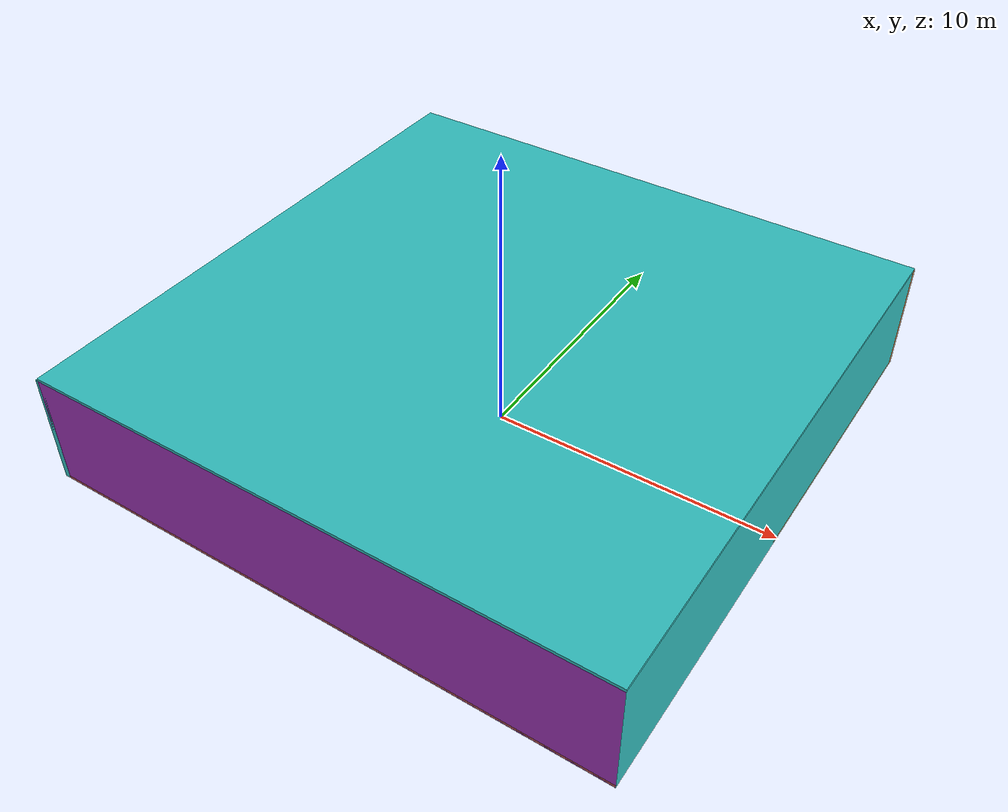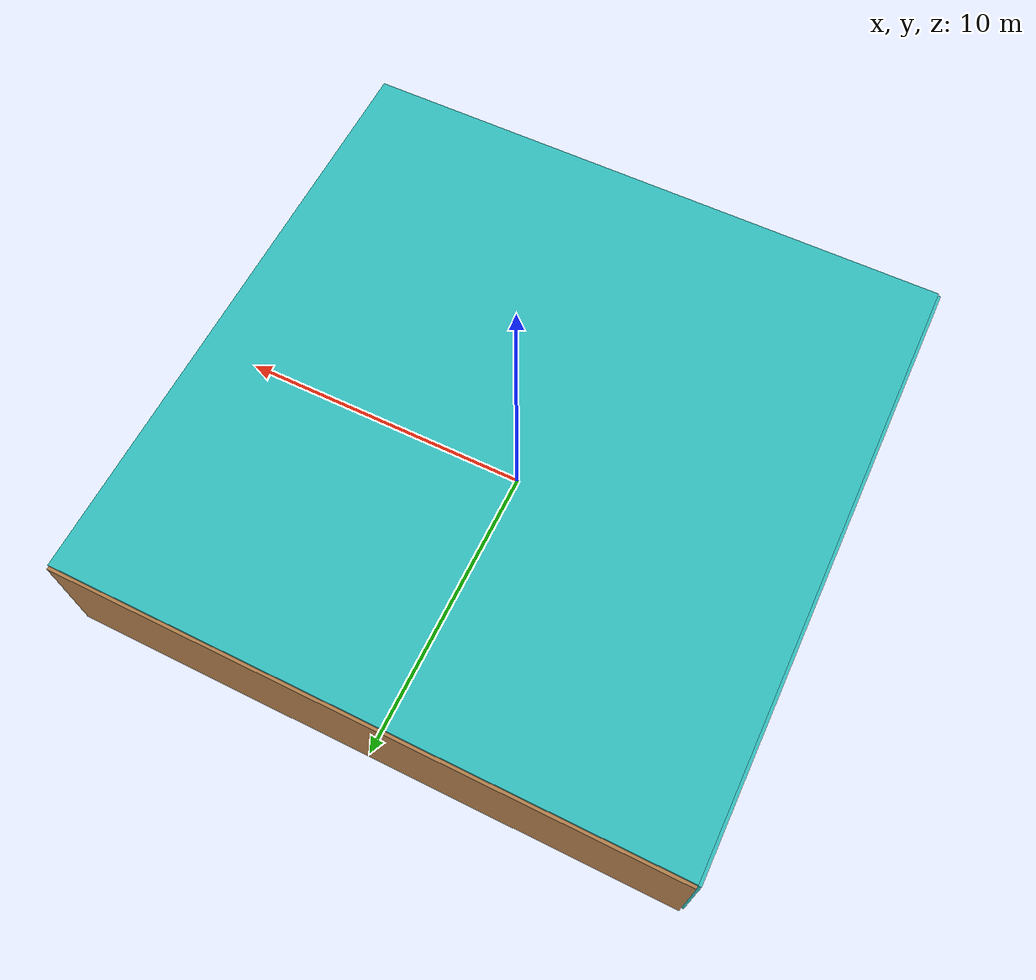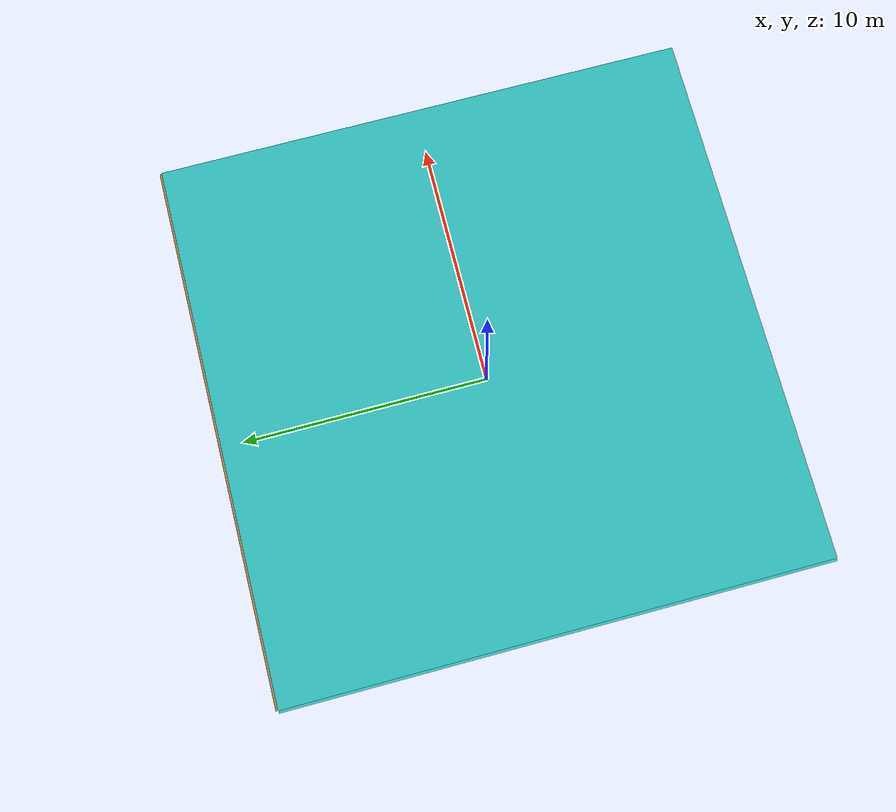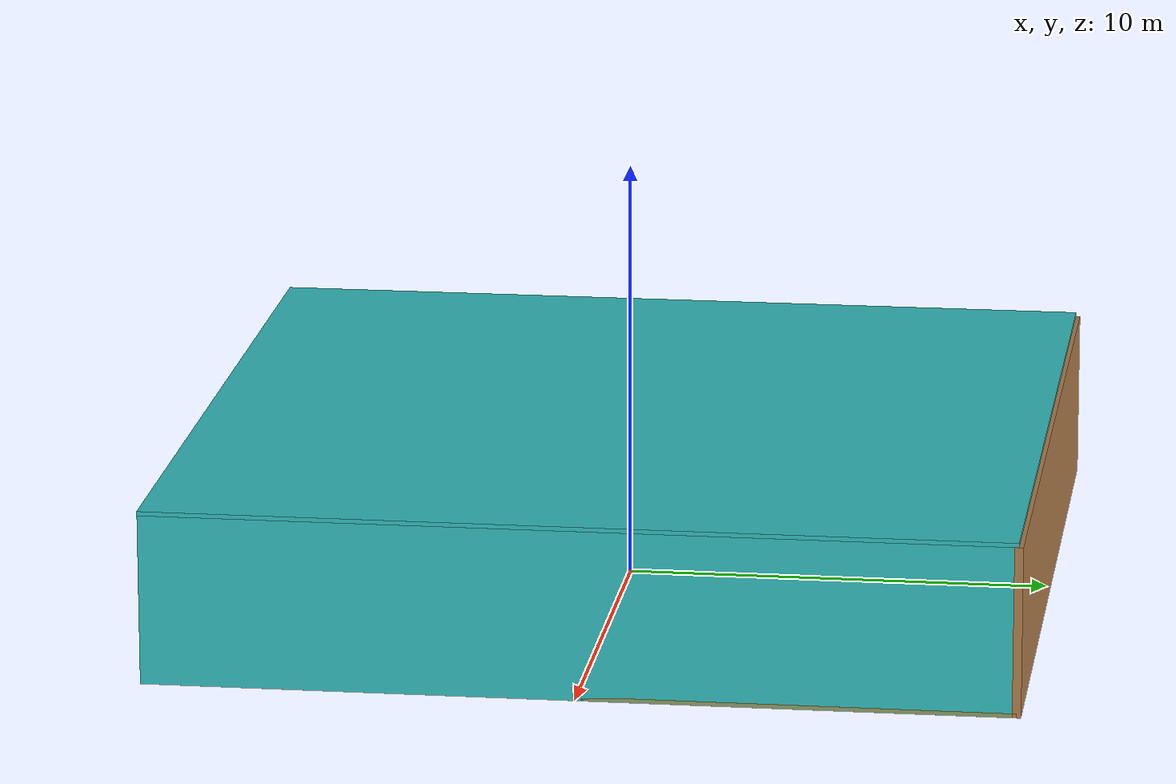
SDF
<sdf version="1.4">
 <world name="default">
  <physics type="ode">
   <max_step_size>0.001</max_step_size>
   <real_time_factor>1</real_time_factor>
   <real_time_update_rate>1000</real_time_update_rate>
   <gravity>0 0 -9.8</gravity>
  </physics>
  <scene><ambient>0.4 0.4 0.4 1</ambient><background>0.7 0.7 0.7 1</background><shadows>1</shadows></scene>
  <model name="Surrounding">
   <static>1</static>
   <link name="Ceiling">
    <collision name="Ceiling_Collision"><geometry><box><size>20 20 0.1</size></box></geometry></collision>
    <visual name="Ceiling_Visual">
     <geometry><box><size>20 20 0.1</size></box></geometry>
     <material>
      <script>
       <uri>file://media/materials/scripts/gazebo.material</uri>
       <name>Gazebo/TurquoiseGlowOutline</name>
      </script>
     </material>
    </visual>
    <pose>0 0 4.05 0 0 0</pose>
   </link>
   <link name="Wall_South">
    <collision name="Wall_South_Collision">
     <geometry><box><size>20 0 4</size></box></geometry>
     <pose>0 0 2 0 -0 0</pose>
    </collision>
    <visual name="Wall_South_Visual">
     <pose>0 0 2 0 -0 0</pose>
     <geometry><box><size>20 0 4</size></box></geometry>
     <material>
      <script><uri>file://media/materials/scripts/gazebo.material</uri><name>Gazebo/Purple</name></script>
     </material>
    </visual>
    <velocity_decay><linear>0</linear><angular>0</angular></velocity_decay>
    <pose>0 -10 0 0 -0 0</pose>
   </link>
   <link name="Wall_East">
    <collision name="Wall_21_Collision">
     <geometry><box><size>20 0 4</size></box></geometry>
     <pose>0 0 2 0 -0 0</pose>
    </collision>
    <visual name="Wall_21_Visual">
     <pose>0 0 2 0 -0 0</pose>
     <geometry><box><size>20 0 4</size></box></geometry>
     <material>
      <script><uri>file://media/materials/scripts/gazebo.material</uri><name>Gazebo/Turquoise</name></script>
     </material>
    </visual>
    <velocity_decay><linear>0</linear><angular>0</angular></velocity_decay>
    <pose>10 0 0 0 -0 1.5708</pose>
   </link>
   <link name="Wall_North">
    <collision name="Wall_22_Collision">
     <geometry><box><size>20 0.2 4</size></box></geometry>
     <pose>0 0 2 0 -0 0</pose>
    </collision>
    <visual name="Wall_22_Visual">
     <pose>0 0 2 0 -0 0</pose>
     <geometry><box><size>20 0.2 4</size></box></geometry>
     <material>
      <script><uri>file://media/materials/scripts/gazebo.material</uri><name>Gazebo/WoodPallet</name></script>
     </material>
    </visual>
    <velocity_decay><linear>0</linear><angular>0</angular></velocity_decay>
    <pose>0 10 0 0 -0 0</pose>
   </link>
   <link name="Wall_West">
    <collision name="Wall_23_Collision">
     <geometry><box><size>20 0.2 4</size></box></geometry>
     <pose>0 0 2 0 -0 0</pose>
    </collision>
    <visual name="Wall_23_Visual">
     <pose>0 0 2 0 -0 0</pose>
     <geometry><box><size>20 0.2 4</size></box></geometry>
     <material>
      <script><uri>file://media/materials/scripts/gazebo.material</uri><name>Gazebo/Turquoise</name></script>
     </material>
    </visual>
    <velocity_decay><linear>0</linear><angular>0</angular></velocity_decay>
    <pose>-10 0 0 0 0 -1.5708</pose>
   </link>
   <link name="Ground_link">
    <collision name="collision">
     <pose>0 0 .05 0 -0 0</pose>
     <geometry><box><size>20 20 0.1</size></box></geometry>
    </collision>
    <visual name="visual">
     <pose>0 0 .05 0 -0 0</pose>
     <geometry><box><size>20 20 0.1</size></box></geometry>
     <material>
      <script>
       <uri>file://media/materials/scripts/gazebo.material</uri>
       <name>Gazebo/OrangeTransparent</name>
      </script>
     </material>
    </visual>
   </link>
   <static>1</static>
  </model>
  <spherical_coordinates>
   <surface_model>EARTH_WGS84</surface_model>
   <latitude_deg>0</latitude_deg>
   <longitude_deg>0</longitude_deg>
   <elevation>0</elevation>
   <heading_deg>0</heading_deg>
  </spherical_coordinates>
  <light name="lightball_0" type="diffuse">
   <diffuse>0.8 0.8 0.8 1</diffuse>
   <specular>0.2 0.2 0.2 1</specular>
   <attenuation>
    <range>100</range>
    <constant>0.7</constant>
    <linear>0.01</linear>
    <quadratic>0.001</quadratic>
   </attenuation>
   <direction>-0.5 0.1 -0.9</direction>
   <pose>-0.36479824746 -3.0300054066 2.5275473008 0 0 0</pose>
  </light>
  <light name="lightball_1" type="diffuse">
   <diffuse>0.8 0.8 0.8 1</diffuse>
   <specular>0.2 0.2 0.2 1</specular>
   <attenuation>
    <range>100</range>
    <constant>0.7</constant>
    <linear>0.01</linear>
    <quadratic>0.001</quadratic>
   </attenuation>
   <direction>-0.5 0.1 -0.9</direction>
   <pose>6.47139048425 -2.59879379143 2.14345023109 0 0 0</pose>
  </light>
  <light name="lightball_2" type="diffuse">
   <diffuse>0.8 0.8 0.8 1</diffuse>
   <specular>0.2 0.2 0.2 1</specular>
   <attenuation>
    <range>100</range>
    <constant>0.7</constant>
    <linear>0.01</linear>
    <quadratic>0.001</quadratic>
   </attenuation>
   <direction>-0.5 0.1 -0.9</direction>
   <pose>-6.51938120083 -1.06846151645 3.36236166809 0 0 0</pose>
  </light>
  <light name="lightball_3" type="diffuse">
   <diffuse>0.8 0.8 0.8 1</diffuse>
   <specular>0.2 0.2 0.2 1</specular>
   <attenuation>
    <range>100</range>
    <constant>0.7</constant>
    <linear>0.01</linear>
    <quadratic>0.001</quadratic>
   </attenuation>
   <direction>-0.5 0.1 -0.9</direction>
   <pose>-9.26216697494 -7.87466786759 1.69334558107 0 0 0</pose>
  </light>
  <light name="lightball_4" type="diffuse">
   <diffuse>0.8 0.8 0.8 1</diffuse>
   <specular>0.2 0.2 0.2 1</specular>
   <attenuation>
    <range>100</range>
    <constant>0.7</constant>
    <linear>0.01</linear>
    <quadratic>0.001</quadratic>
   </attenuation>
   <direction>-0.5 0.1 -0.9</direction>
   <pose>-7.29243302642 6.90637442677 1.17900560362 0 0 0</pose>
  </light>
  <include>
   <uri>model://textured_shapes</uri>
   <pose>-7.01956533722 -7.07945413503 0 0 0 2.67046806015</pose>
  </include>
  <include><uri>model://cabinet</uri><pose>-6.82833016313 7.37465594662 0 0 0 2.8463485379</pose></include>
  <include><uri>model://cabinet</uri><pose>-4.01629394847 -4.13490212186 0 0 0 0.142913957098</pose></include>
  <include>
   <uri>model://robocup_3Dsim_goal</uri>
   <pose>1.51217422917 1.08600156111 0 0 0 1.67889625943</pose>
  </include>
  <include><uri>model://cabinet</uri><pose>4.7511452742 -3.91044420156 0 0 0 0.117971505647</pose></include>
 </world>
</sdf>

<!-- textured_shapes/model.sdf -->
<sdf version="1.6">
  <model name="textured_shapes">
    <pose>0 0 0.5 0 0 0</pose>
    <link name="box">
      <pose>0 -1.5 0 0 0 0</pose>
      <collision name="collision">
        <geometry>
          <box>
            <size>1 1 1</size>
          </box>
        </geometry>
      </collision>
      <visual name="visual">
        <geometry>
          <box>
            <size>1 1 1</size>
          </box>
        </geometry>
        <material>
          <script>
            <uri>model://../model_source/models/textured_shapes/materials/scripts</uri>
            <uri>model://../model_source/models/textured_shapes/materials/textures</uri>
            <name>TexturedShape/Squares</name>
          </script>
        </material>
      </visual>
    </link>
    <link name="sphere">
      <collision name="collision">
        <geometry>
          <sphere>
            <radius>0.5</radius>
          </sphere>
        </geometry>
      </collision>
      <visual name="visual">
        <geometry>
          <sphere>
            <radius>0.5</radius>
          </sphere>
        </geometry>
        <material>
          <script>
            <uri>model://../model_source/models/textured_shapes/materials/scripts</uri>
            <uri>model://../model_source/models/textured_shapes/materials/textures</uri>
            <name>TexturedShape/Squares</name>
          </script>
        </material>
      </visual>
    </link>
    <link name="cylinder">
      <pose>0 1.5 0 0 0 0</pose>
      <collision name="collision">
        <geometry>
          <cylinder>
            <radius>0.5</radius>
            <length>1</length>
          </cylinder>
        </geometry>
      </collision>
      <visual name="visual">
        <geometry>
          <cylinder>
            <radius>0.5</radius>
            <length>1</length>
          </cylinder>
        </geometry>
        <material>
          <script>
            <uri>model://../model_source/models/textured_shapes/materials/scripts</uri>
            <uri>model://../model_source/models/textured_shapes/materials/textures</uri>
            <name>TexturedShape/Squares</name>
          </script>
        </material>
      </visual>
    </link>
  </model>
</sdf>

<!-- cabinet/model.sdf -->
<sdf version="1.5">
  <model name="cabinet">
    <static>true</static>
    <link name="cabinet_bottom_plate">
      <inertial>
        <pose>0 0 -1 0 0 0</pose>
        <inertia>
          <ixx>2.050000</ixx>
          <ixy>0</ixy>
          <ixz>0</ixz>
          <iyy>2.050000</iyy>
          <iyz>0</iyz>
          <izz>2.050000</izz>
        </inertia>
        <mass>25.000000</mass>
      </inertial>
      <collision name="cabinet_bottom_plate_geom">
        <pose>0 0 0.010000 0 0 0</pose>
        <geometry>
          <box>
            <size>0.450000 0.450000 0.020000</size>
          </box>
        </geometry>
      </collision>
      <visual name="cabinet_bottom_plate_geom_visual">
        <pose>0 0 0.010000 0 0 0</pose>
        <geometry>
          <box>
            <size>0.450000 0.450000 0.020000</size>
          </box>
        </geometry>
        <material>
          <script>
            <uri>model://media/materials/scripts/gazebo.material</uri>
            <name>Gazebo/Wood</name>
          </script>
        </material>
      </visual>
      <collision name="cabinet_bottom_plate_geom_cabinet_back_plate">
        <pose>0.235000 0 0.510000 0 0 0</pose>
        <geometry>
          <box>
            <size>0.020000 0.450000 1.020000</size>
          </box>
        </geometry>
      </collision>
      <visual name="cabinet_bottom_plate_geom_cabinet_back_plate_visual">
        <pose>0.235000 0 0.510000 0 0 0</pose>
        <geometry>
          <box>
            <size>0.020000 0.450000 1.020000</size>
          </box>
        </geometry>
        <material>
          <script>
            <uri>model://media/materials/scripts/gazebo.material</uri>
            <name>Gazebo/Wood</name>
          </script>
        </material>
      </visual>
      <collision name="cabinet_bottom_plate_geom_cabinet_left_plate">
        <pose>0 0.235000 0.510000 0 0 0</pose>
        <geometry>
          <box>
            <size>0.450000 0.020000 1.020000</size>
          </box>
        </geometry>
      </collision>
      <visual name="cabinet_bottom_plate_geom_cabinet_left_plate_visual">
        <pose>0 0.235000 0.510000 0 0 0</pose>
        <geometry>
          <box>
            <size>0.450000 0.020000 1.020000</size>
          </box>
        </geometry>
        <material>
          <script>
            <uri>model://media/materials/scripts/gazebo.material</uri>
            <name>Gazebo/Wood</name>
          </script>
        </material>
      </visual>
      <collision name="cabinet_bottom_plate_geom_cabinet_middle_plate">
        <pose>0 0 0.510000 0 0 0</pose>
        <geometry>
          <box>
            <size>0.450000 0.450000 0.020000</size>
          </box>
        </geometry>
      </collision>
      <visual name="cabinet_bottom_plate_geom_cabinet_middle_plate_visual">
        <pose>0 0 0.510000 0 0 0</pose>
        <geometry>
          <box>
            <size>0.450000 0.450000 0.020000</size>
          </box>
        </geometry>
        <material>
          <script>
            <uri>model://media/materials/scripts/gazebo.material</uri>
            <name>Gazebo/Wood</name>
          </script>
        </material>
      </visual>
      <collision name="cabinet_bottom_plate_geom_cabinet_right_plate">
        <pose>0 -0.235000 0.510000 0 0 0</pose>
        <geometry>
          <box>
            <size>0.450000 0.020000 1.020000</size>
          </box>
        </geometry>
      </collision>
      <visual name="cabinet_bottom_plate_geom_cabinet_right_plate_visual">
        <pose>0 -0.235000 0.510000 0 0 0</pose>
        <geometry>
          <box>
            <size>0.450000 0.020000 1.020000</size>
          </box>
        </geometry>
        <material>
          <script>
            <uri>model://media/materials/scripts/gazebo.material</uri>
            <name>Gazebo/Wood</name>
          </script>
        </material>
      </visual>
      <collision name="cabinet_bottom_plate_geom_cabinet_top_plate">
        <pose>0 0 1.010000 0 0 0</pose>
        <geometry>
          <box>
            <size>0.450000 0.450000 0.020000</size>
          </box>
        </geometry>
      </collision>
      <visual name="cabinet_bottom_plate_geom_cabinet_top_plate_visual">
        <pose>0 0 1.010000 0 0 0</pose>
        <geometry>
          <box>
            <size>0.450000 0.450000 0.020000</size>
          </box>
        </geometry>
        <material>
          <script>
            <uri>model://media/materials/scripts/gazebo.material</uri>
            <name>Gazebo/Wood</name>
          </script>
        </material>
      </visual>
    </link>
  </model>
</sdf>

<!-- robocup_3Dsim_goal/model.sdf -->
<sdf version="1.5">
  <model name="robocup_3d_goal">
    <static>true</static>
    <link name="left_post">
      <pose>0 1.05 0.45 0 0 0</pose>
      <collision name="collision">
        <geometry>
          <cylinder>
            <radius>0.05</radius>
            <length>0.9</length>
          </cylinder>
        </geometry>
      </collision>
      <visual name="visual">
        <geometry>
          <cylinder>
            <radius>0.05</radius>
            <length>0.9</length>
          </cylinder>
        </geometry>
        <material>
          <script>
            <uri>file://media/materials/scripts/gazebo.material</uri>
            <name>Gazebo/ZincYellow</name>
          </script>
        </material>
      </visual>
    </link>
    <link name="left_support_horiz_lower">
      <pose>0.30 1.05 0.01 0 0 0</pose>
      <collision name="collision">
        <geometry>
          <box>
            <size>0.50 0.02 0.02</size>
          </box>
        </geometry>
      </collision>
      <visual name="visual">
        <geometry>
          <box>
            <size>0.50 0.02 0.02</size>
          </box>
        </geometry>
        <material>
          <script>
            <uri>file://media/materials/scripts/gazebo.material</uri>
            <name>Gazebo/White</name>
          </script>
        </material>
      </visual>
    </link>
    <link name="left_support_horiz_upper">
      <pose>0.30 1.05 0.79 0 0 0</pose>
      <collision name="collision">
        <geometry>
          <box>
            <size>0.50 0.02 0.02</size>
          </box>
        </geometry>
      </collision>
      <visual name="visual">
        <geometry>
          <box>
            <size>0.50 0.02 0.02</size>
          </box>
        </geometry>
        <material>
          <script>
            <uri>file://media/materials/scripts/gazebo.material</uri>
            <name>Gazebo/White</name>
          </script>
        </material>
      </visual>
    </link>
    <link name="left_support_vertical">
      <pose>0.56 1.05 0.4 0 1.5708 0</pose>
      <collision name="collision">
        <geometry>
          <box>
            <size>0.80 0.02 0.02</size>
          </box>
        </geometry>
      </collision>
      <visual name="visual">
        <geometry>
          <box>
            <size>0.80 0.02 0.02</size>
          </box>
        </geometry>
        <material>
          <script>
            <uri>file://media/materials/scripts/gazebo.material</uri>
            <name>Gazebo/White</name>
          </script>
        </material>
      </visual>
    </link>
    <link name="right_support_horiz_lower">
      <pose>0.30 -1.05 0.01 0 0 0</pose>
      <collision name="collision">
        <geometry>
          <box>
            <size>0.50 0.02 0.02</size>
          </box>
        </geometry>
      </collision>
      <visual name="visual">
        <geometry>
          <box>
            <size>0.50 0.02 0.02</size>
          </box>
        </geometry>
        <material>
          <script>
            <uri>file://media/materials/scripts/gazebo.material</uri>
            <name>Gazebo/White</name>
          </script>
        </material>
      </visual>
    </link>
    <link name="right_support_horiz_upper">
      <pose>0.30 -1.05 0.79 0 0 0</pose>
      <collision name="collision">
        <geometry>
          <box>
            <size>0.50 0.02 0.02</size>
          </box>
        </geometry>
      </collision>
      <visual name="visual">
        <geometry>
          <box>
            <size>0.50 0.02 0.02</size>
          </box>
        </geometry>
        <material>
          <script>
            <uri>file://media/materials/scripts/gazebo.material</uri>
            <name>Gazebo/White</name>
          </script>
        </material>
      </visual>
    </link>
    <link name="right_support_vertical">
      <pose>0.56 -1.05 0.4 0 1.5708 0</pose>
      <collision name="collision">
        <geometry>
          <box>
            <size>0.80 0.02 0.02</size>
          </box>
        </geometry>
      </collision>
      <visual name="visual">
        <geometry>
          <box>
            <size>0.80 0.02 0.02</size>
          </box>
        </geometry>
        <material>
          <script>
            <uri>file://media/materials/scripts/gazebo.material</uri>
            <name>Gazebo/White</name>
          </script>
        </material>
      </visual>
    </link>
    <link name="center_support_horiz_lower">
      <pose>0.56 0 0.01 0 1.5708 0</pose>
      <collision name="collision">
        <geometry>
          <box>
            <size>0.02 2.08 0.02</size>
          </box>
        </geometry>
      </collision>
      <visual name="visual">
        <geometry>
          <box>
            <size>0.02 2.08 0.02</size>
          </box>
        </geometry>
        <material>
          <script>
            <uri>file://media/materials/scripts/gazebo.material</uri>
            <name>Gazebo/White</name>
          </script>
        </material>
      </visual>
    </link>
    <link name="center_support_horiz_upper">
      <pose>0.56 0 0.79 0 1.5708 0</pose>
      <collision name="collision">
        <geometry>
          <box>
            <size>0.02 2.08 0.02</size>
          </box>
        </geometry>
      </collision>
      <visual name="visual">
        <geometry>
          <box>
            <size>0.02 2.08 0.02</size>
          </box>
        </geometry>
        <material>
          <script>
            <uri>file://media/materials/scripts/gazebo.material</uri>
            <name>Gazebo/White</name>
          </script>
        </material>
      </visual>
    </link>
    <link name="right_post">
      <pose>0 -1.05 0.45 0 0 0</pose>
      <collision name="collision">
        <geometry>
          <cylinder>
            <radius>0.05</radius>
            <length>0.9</length>
          </cylinder>
        </geometry>
      </collision>
      <visual name="visual">
        <geometry>
          <cylinder>
            <radius>0.05</radius>
            <length>0.9</length>
          </cylinder>
        </geometry>
        <material>
          <script>
            <uri>file://media/materials/scripts/gazebo.material</uri>
            <name>Gazebo/ZincYellow</name>
          </script>
        </material>
      </visual>
    </link>
    <link name="crossbar">
      <pose>0 0 0.85 1.57 1.57 0</pose>
      <collision name="collision">
        <geometry>
          <cylinder>
            <radius>0.05</radius>
            <length>2.0</length>
          </cylinder>
        </geometry>
      </collision>
      <visual name="visual">
        <geometry>
          <cylinder>
            <radius>0.05</radius>
            <length>2.0</length>
          </cylinder>
        </geometry>
        <material>
          <script>
            <uri>file://media/materials/scripts/gazebo.material</uri>
            <name>Gazebo/ZincYellow</name>
          </script>
        </material>
      </visual>
    </link>
    <link name="center_net">
      <pose>0.56 0 0.40 0 0 0</pose>
      <collision name="collision">
        <geometry>
          <box>
            <size>0.01 2.1 0.80</size>
          </box>
        </geometry>
      </collision>
      <visual name="visual">
        <geometry>
          <box>
            <size>0.01 2.1 0.80</size>
          </box>
        </geometry>
        <material>
          <script>
            <uri>model://../model_source/models/robocup09_spl_field/materials/scripts/</uri>
            <uri>model://../model_source/models/robocup09_spl_field/materials/textures/</uri>
            <name>RoboCup/Net</name>
          </script>
        </material>
      </visual>
    </link>
    <link name="left_net">
      <pose>0.30 1.05 0.40 0 0 0</pose>
      <collision name="collision">
        <geometry>
          <box>
            <size>0.50 0.01 0.76</size>
          </box>
        </geometry>
      </collision>
      <visual name="visual">
        <geometry>
          <box>
            <size>0.50 0.01 0.76</size>
          </box>
        </geometry>
        <material>
          <script>
            <uri>model://../model_source/models/robocup09_spl_field/materials/scripts/</uri>
            <uri>model://../model_source/models/robocup09_spl_field/materials/textures/</uri>
            <name>RoboCup/Net</name>
          </script>
        </material>
      </visual>
    </link>
    <link name="right_net">
      <pose>0.30 -1.05 0.40 0 0 0</pose>
      <collision name="collision">
        <geometry>
          <box>
            <size>0.50 0.01 0.76</size>
          </box>
        </geometry>
      </collision>
      <visual name="visual">
        <geometry>
          <box>
            <size>0.50 0.01 0.76</size>
          </box>
        </geometry>
        <material>
          <script>
            <uri>model://../model_source/models/robocup09_spl_field/materials/scripts/</uri>
            <uri>model://../model_source/models/robocup09_spl_field/materials/textures/</uri>
            <name>RoboCup/Net</name>
          </script>
        </material>
      </visual>
    </link>
  </model>
</sdf>
